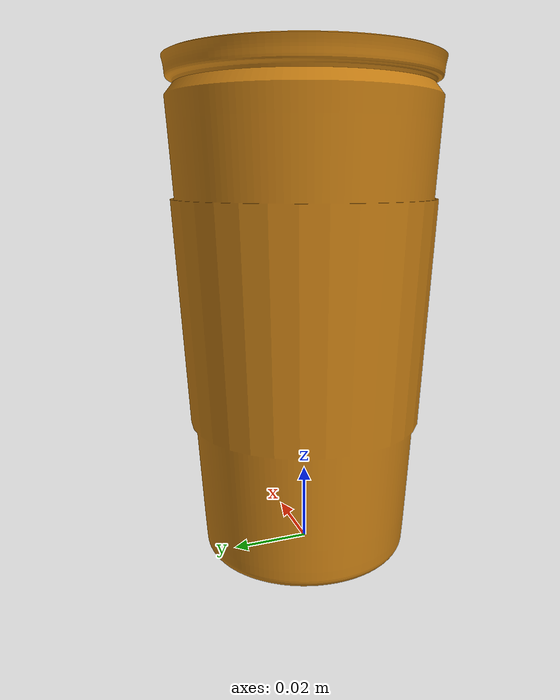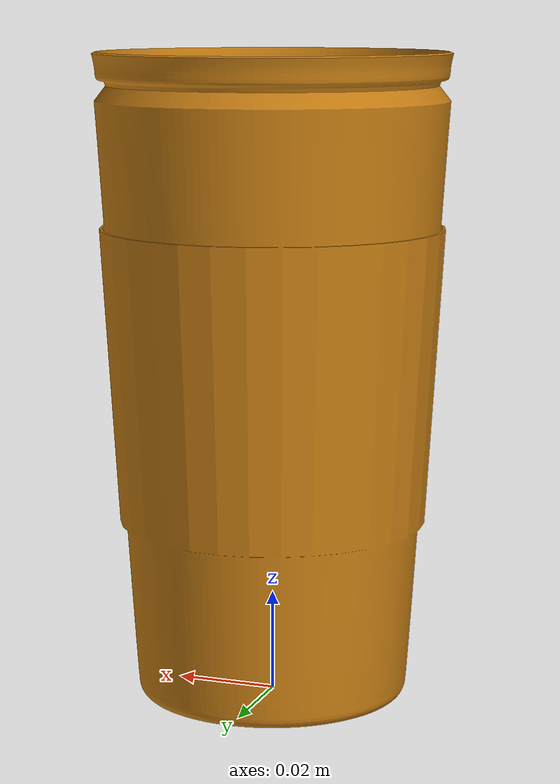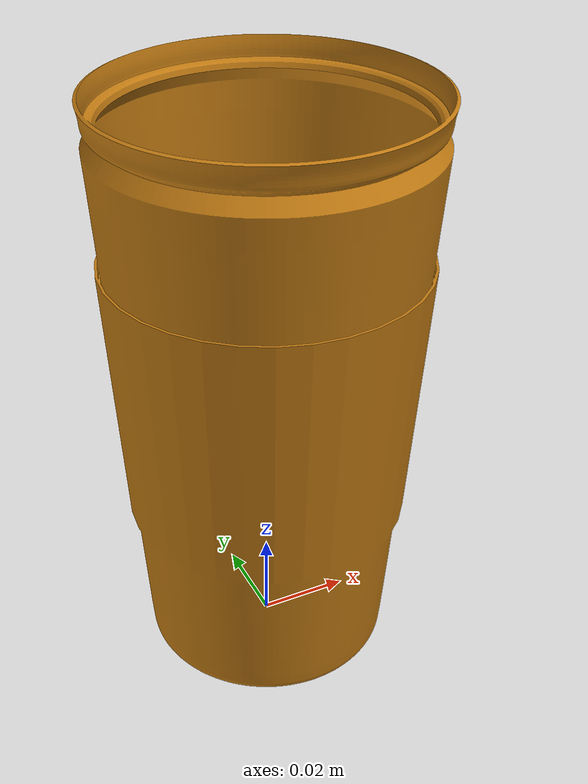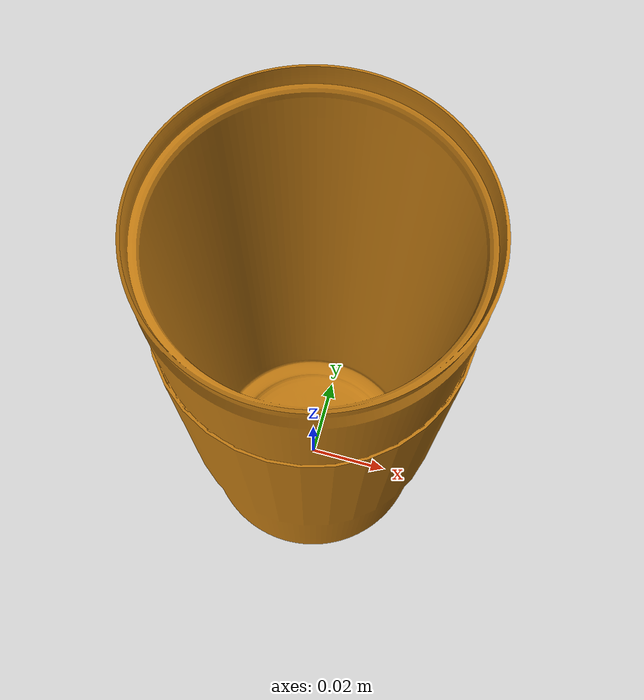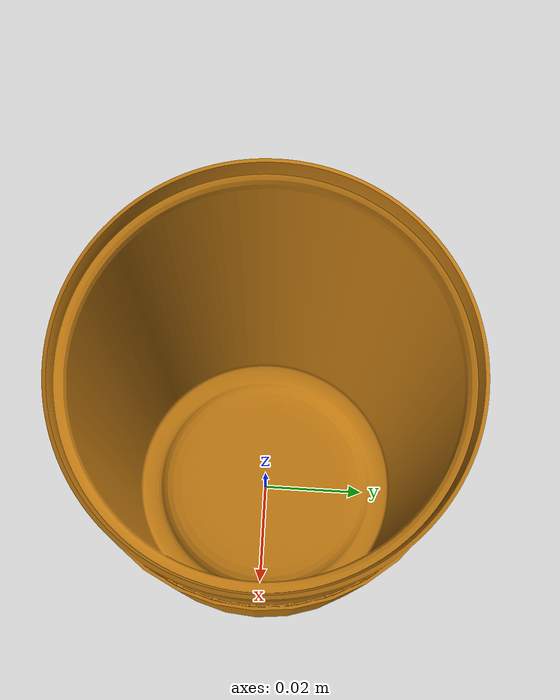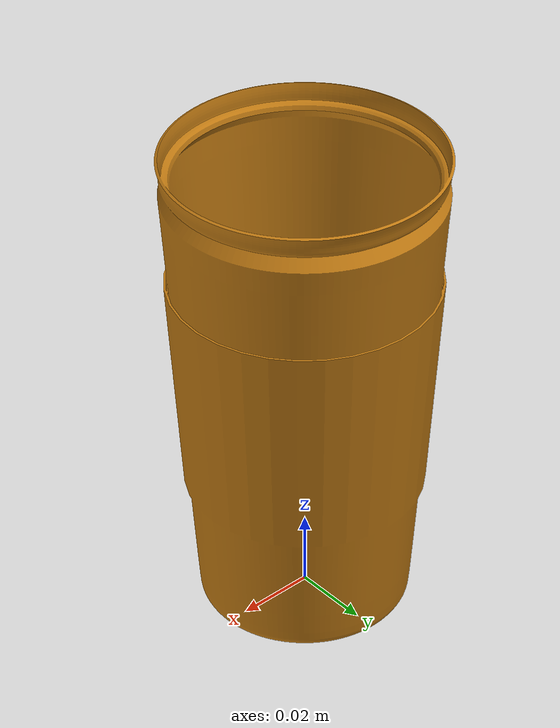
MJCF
<mujoco>
    <asset>
        <mesh name="cuplid_cup" file="cuplid_cup.stl" scale="0.75 0.75 1"/>
    </asset>
    <worldbody>
        <body name="cuplid_cup" pos="0.0 0.0 0.0" quat="1.0 0.0 0.0 0.0">
            <geom type="mesh" name="cuplid_cup" mesh="cuplid_cup" pos="0 0 0.0"               rgba="0.752 0.475 0.068 1" contype="0" conaffinity="0"/>
            <geom name="cuplid_cup_collision" type="cylinder" pos="0 0 0.065" size="0.032 0.06"     rgba="1 0 0 0" friction="2 0.01 0.001"/>
            <geom name="cuplid_cup_collision_1" type="box" pos="0 0 0.055" size="0.032 0.02 0.05"   rgba="1 0 0 0" friction="2 0.01 0.001"/>
            <geom name="cuplid_cup_collision_2" type="box" pos="0 0 0.055" size="0.02 0.032 0.05"   rgba="1 0 0 0" friction="2 0.01 0.001"/>
            <geom name="cuplid_cup_collision_3" type="box" pos="0 0 0.055" size="0.018 0.032 0.05"  rgba="1 0 0 0" friction="2 0.01 0.001"/>
            <geom name="cuplid_cup_collision_4" type="box" pos="0 0 0.055" size="0.032 0.018 0.05"  rgba="1 0 0 0" friction="2 0.01 0.001"/>
            <joint name="cuplid_cup_joint" type="free"/>
            <inertial pos="0 0 0" mass="0.005" diaginertia="0.002 0.002 0.002" />
        </body>
    </worldbody>

</mujoco>
